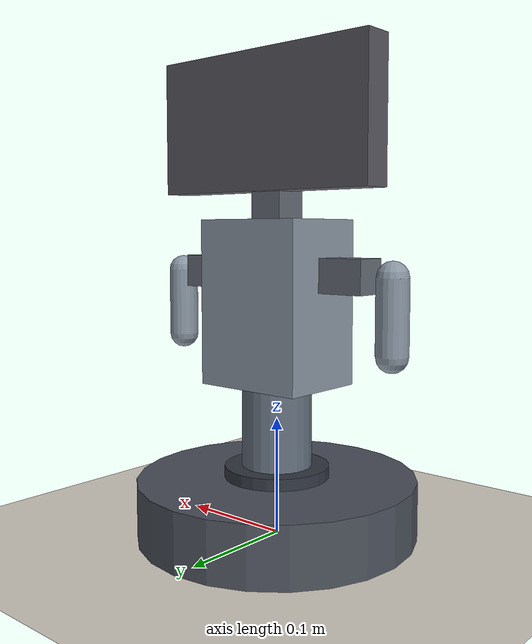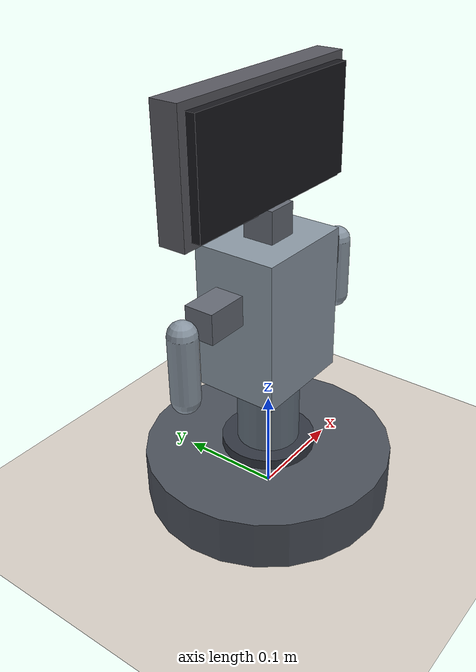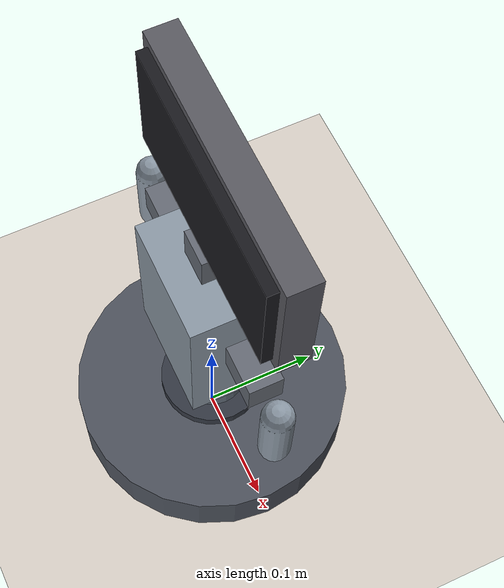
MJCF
<mujoco model="dock_companion">
  <compiler angle="radian" coordinate="local" autolimits="true"/>
  <option timestep="0.002" gravity="0 0 -9.81" integrator="implicitfast"/>

  <visual>
    <global offwidth="1280" offheight="1280"/>
  </visual>

  <default>
    <joint damping="0.4" armature="0.005"/>
    <position kp="30" kv="1.5" forcerange="-15 15"/>
    <geom type="box" rgba="0.7 0.7 0.75 1" contype="0" conaffinity="0"/>
    <default class="phone">
      <geom type="box" rgba="0.10 0.10 0.12 1"/>
    </default>
    <default class="limb">
      <geom type="capsule" rgba="0.55 0.6 0.65 1"/>
    </default>
  </default>

  <worldbody>
    <light name="top"   pos="0  0   1.5"   dir="0 0 -1"          diffuse="1.0 1.0 1.0"/>
    <light name="front" pos="0 -0.8  0.5"  dir="0 1 -0.2"        diffuse="0.7 0.7 0.7"/>
    <light name="side"  pos="0.8 -0.4 0.8" dir="-0.6 0.3 -0.5"   diffuse="0.5 0.5 0.5"/>

    <!-- Desk surface. -->
    <geom name="desk" type="plane" size="1.0 1.0 0.01" rgba="0.85 0.82 0.78 1"
          contype="1" conaffinity="1"/>

    <!-- Base: 240mm Ø × 50mm tall. Houses the foot_yaw motor (NEMA-17
         or DS3218 servo) vertically inside. -->
    <body name="base" pos="0 0 0.025">
      <joint name="foot_yaw" type="hinge" axis="0 0 1" range="-1.5708 1.5708"/>
      <geom name="base_disc" type="cylinder" size="0.120 0.025"
            rgba="0.30 0.32 0.36 1"/>
      <!-- A small visible "motor cap" on top of the base to read as a
           mounting flange. -->
      <geom name="base_flange" type="cylinder" size="0.045 0.005"
            pos="0 0 0.030" rgba="0.20 0.22 0.26 1"/>

      <!-- Rigid leg shaft, 30mm Ø × 70mm tall. -->
      <geom name="leg_shaft" type="cylinder" size="0.030 0.035"
            pos="0 0 0.070" rgba="0.40 0.45 0.50 1"/>

      <!-- ── Trunk ──────────────────────────────────────────────────────
           Houses battery + ESP32 + drivers + neck/shoulder servos.
           Half-extents 50×40×70 mm → 100×80×140 mm box. -->
      <body name="trunk" pos="0 0 0.175">
        <geom name="trunk_geom" type="box"
              size="0.050 0.040 0.070" rgba="0.55 0.60 0.65 1"/>

        <body name="head" pos="0 0 0.085">
          <joint name="neck_pitch" type="hinge" axis="1 0 0" range="-0.5 0.5"/>

          <geom name="neck_stub" type="box" size="0.015 0.015 0.015"
                rgba="0.40 0.42 0.46 1"/>

          <!-- Phone plate (landscape). 200×100mm visible face. -->
          <geom name="head_plate" class="phone"
                size="0.100 0.010 0.050" pos="0 0 0.065"/>
          <geom name="head_frame_back" size="0.108 0.013 0.057"
                pos="0 0.012 0.065" rgba="0.35 0.35 0.38 1"/>
        </body>

        <!-- Left shoulder bracket: visible motor housing on trunk side. -->
        <geom name="shoulder_bracket_left" type="box"
              size="0.020 0.014 0.014" pos="0.075 0 0.025"
              rgba="0.40 0.42 0.46 1"/>

        <body name="arm_left" pos="0.115 0 0.025">
          <joint name="shoulder_left_pitch" type="hinge" axis="0 1 0" range="-1.6 0.0"/>
          <geom class="limb" size="0.013" fromto="0 0 0  0 0 -0.060"/>
        </body>

        <!-- Right shoulder bracket. -->
        <geom name="shoulder_bracket_right" type="box"
              size="0.020 0.014 0.014" pos="-0.075 0 0.025"
              rgba="0.40 0.42 0.46 1"/>

        <body name="arm_right" pos="-0.115 0 0.025">
          <joint name="shoulder_right_pitch" type="hinge" axis="0 1 0" range="0.0 1.6"/>
          <geom class="limb" size="0.013" fromto="0 0 0  0 0 -0.060"/>
        </body>
      </body>
    </body>
  </worldbody>

  <actuator>
    <position name="a_foot_yaw"             joint="foot_yaw"/>
    <position name="a_neck_pitch"           joint="neck_pitch"/>
    <position name="a_shoulder_left_pitch"  joint="shoulder_left_pitch"/>
    <position name="a_shoulder_right_pitch" joint="shoulder_right_pitch"/>
  </actuator>
</mujoco>
